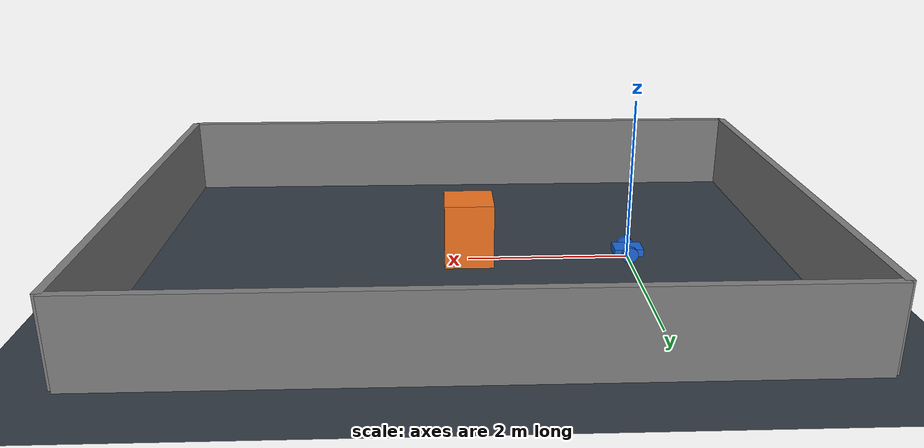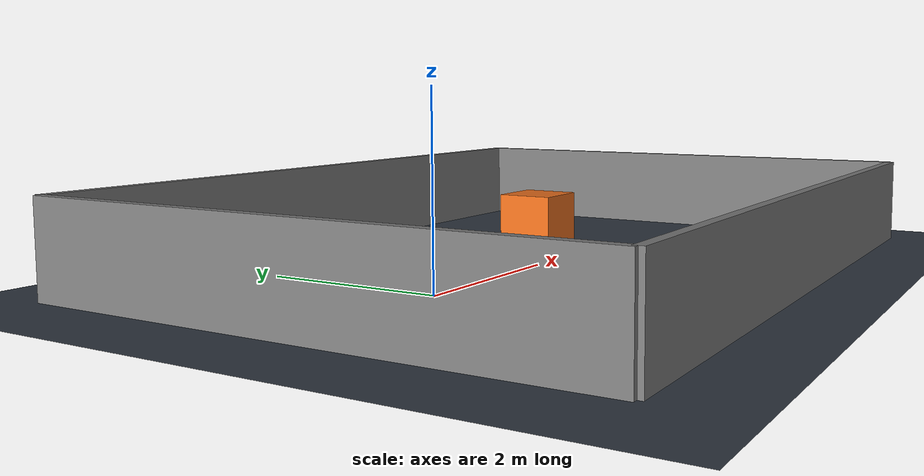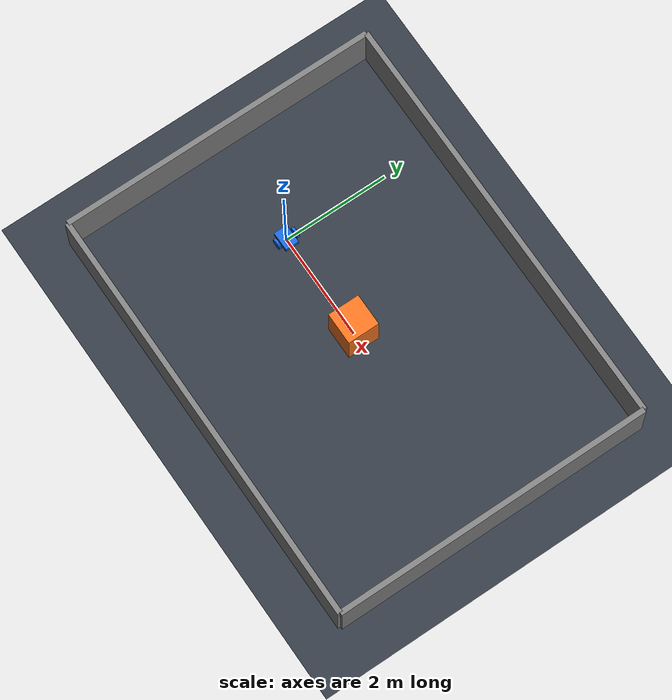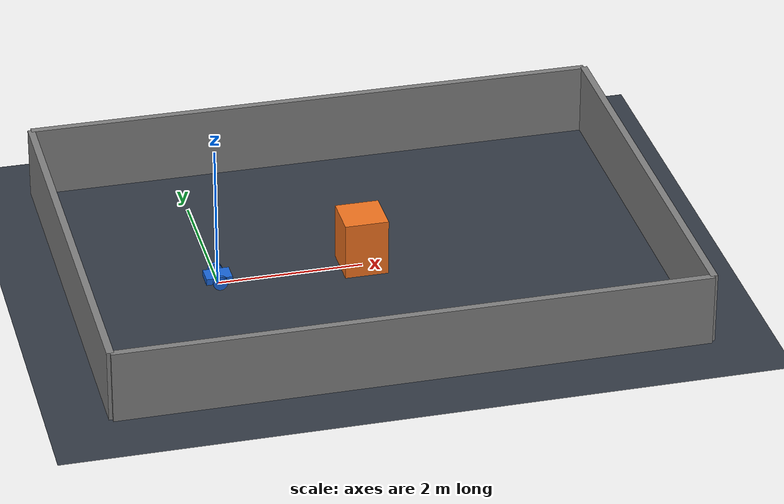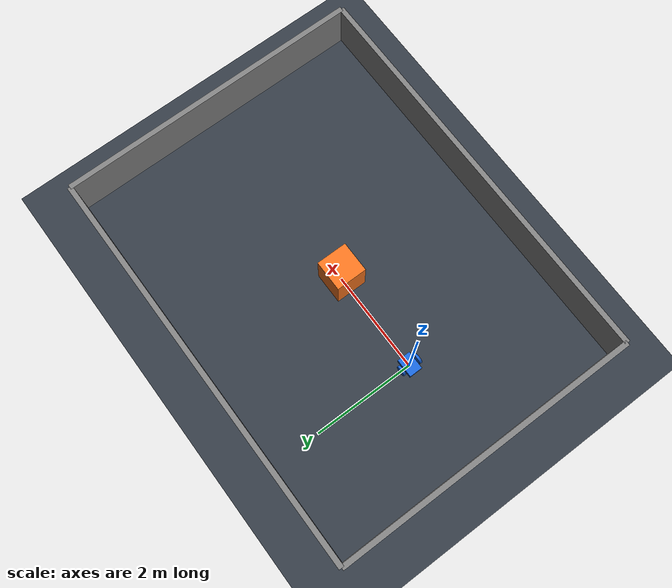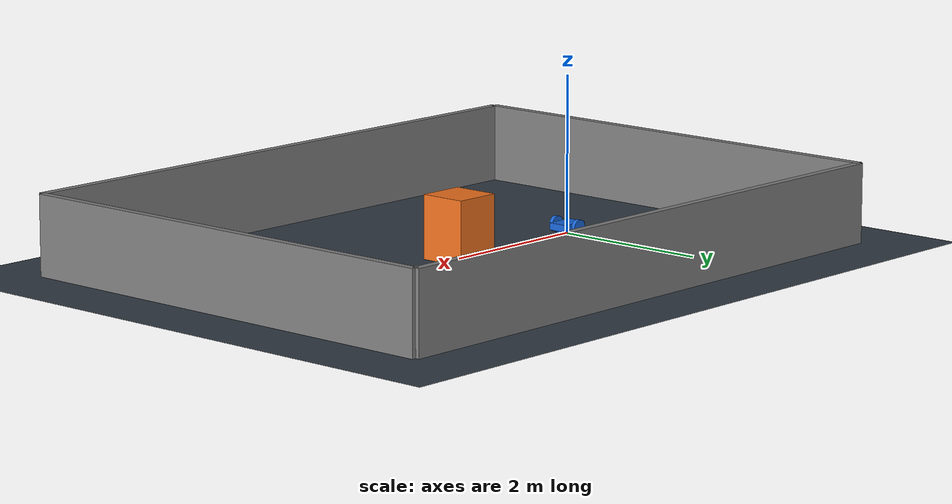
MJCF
<mujoco model="differential_drive_room">
  <compiler angle="radian"/>
  <option timestep="0.002" integrator="implicitfast" cone="elliptic"/>
  <statistic center="2 0 0" extent="9"/>
  <default><geom friction="1 0.01 0.001"/>
    <default class="robot"><geom group="1" rgba=".1 .4 .85 1"/></default>
  </default>
  <worldbody>
    <light pos="2 -1 4" dir="0 0 -1" directional="true"/>
    <geom name="floor" type="plane" size="10 10 .1" rgba=".2 .23 .27 1"/>
    <geom name="west" type="box" pos="-2 0 .5" size=".05 3 .5"/>
    <geom name="east" type="box" pos="6 0 .5" size=".05 3 .5"/>
    <geom name="north" type="box" pos="2 3 .5" size="4 .05 .5"/>
    <geom name="south" type="box" pos="2 -3 .5" size="4 .05 .5"/>
    <geom name="obstacle" type="box" group="2" pos="2 0 .4" size=".3 .3 .4" rgba=".95 .45 .12 1"/>
    <body name="dynamic_box_0" mocap="true" pos="0 0 -10"><geom type="box" group="3" size=".4 .3 .3" rgba=".95 .55 .18 1"/></body>
    <body name="dynamic_box_1" mocap="true" pos="0 0 -10"><geom type="box" group="3" size=".4 .3 .3" rgba=".95 .55 .18 1"/></body>
    <body name="dynamic_box_2" mocap="true" pos="0 0 -10"><geom type="box" group="3" size=".4 .3 .3" rgba=".95 .55 .18 1"/></body>
    <body name="dynamic_box_3" mocap="true" pos="0 0 -10"><geom type="box" group="3" size=".4 .3 .3" rgba=".95 .55 .18 1"/></body>
    <body name="dynamic_box_4" mocap="true" pos="0 0 -10"><geom type="box" group="3" size=".4 .3 .3" rgba=".95 .55 .18 1"/></body>
    <body name="dynamic_box_5" mocap="true" pos="0 0 -10"><geom type="box" group="3" size=".4 .3 .3" rgba=".95 .55 .18 1"/></body>
    <body name="dynamic_box_6" mocap="true" pos="0 0 -10"><geom type="box" group="3" size=".4 .3 .3" rgba=".95 .55 .18 1"/></body>
    <body name="dynamic_box_7" mocap="true" pos="0 0 -10"><geom type="box" group="3" size=".4 .3 .3" rgba=".95 .55 .18 1"/></body>
    <body name="dynamic_box_8" mocap="true" pos="0 0 -10"><geom type="box" group="3" size=".4 .3 .3" rgba=".95 .55 .18 1"/></body>
    <body name="dynamic_box_9" mocap="true" pos="0 0 -10"><geom type="box" group="3" size=".4 .3 .3" rgba=".95 .55 .18 1"/></body>
    <body name="dynamic_box_10" mocap="true" pos="0 0 -10"><geom type="box" group="3" size=".4 .3 .3" rgba=".95 .55 .18 1"/></body>
    <body name="dynamic_box_11" mocap="true" pos="0 0 -10"><geom type="box" group="3" size=".4 .3 .3" rgba=".95 .55 .18 1"/></body>
    <body name="dynamic_box_12" mocap="true" pos="0 0 -10"><geom type="box" group="3" size=".4 .3 .3" rgba=".95 .55 .18 1"/></body>
    <body name="dynamic_box_13" mocap="true" pos="0 0 -10"><geom type="box" group="3" size=".4 .3 .3" rgba=".95 .55 .18 1"/></body>
    <body name="dynamic_box_14" mocap="true" pos="0 0 -10"><geom type="box" group="3" size=".4 .3 .3" rgba=".95 .55 .18 1"/></body>
    <body name="dynamic_box_15" mocap="true" pos="0 0 -10"><geom type="box" group="3" size=".4 .3 .3" rgba=".95 .55 .18 1"/></body>
    <body name="base_link" pos="0 0 .1" childclass="robot">
      <freejoint name="floating_base"/>
      <geom name="chassis" type="box" size=".18 .13 .045" mass="2"/>
      <site name="laser" pos="0 0 .2"/>
      <geom name="front_caster" type="sphere" pos=".14 0 -.065" size=".035" mass=".05" priority="1" friction=".001 .001 .001"/>
      <geom name="back_caster" type="sphere" pos="-.14 0 -.065" size=".035" mass=".05" priority="1" friction=".001 .001 .001"/>
      <body name="left_wheel" pos="0 .18 0">
        <joint name="left_joint" axis="0 1 0" damping=".01"/>
        <geom name="left_tire" type="cylinder" size=".1 .025" quat=".7071067812 .7071067812 0 0" mass=".2"/>
      </body>
      <body name="right_wheel" pos="0 -.18 0">
        <joint name="right_joint" axis="0 1 0" damping=".01"/>
        <geom name="right_tire" type="cylinder" size=".1 .025" quat=".7071067812 .7071067812 0 0" mass=".2"/>
      </body>
    </body>
  </worldbody>
  <actuator>
    <velocity name="left_motor" joint="left_joint" kv="5" forcelimited="true" forcerange="-2 2"/>
    <velocity name="right_motor" joint="right_joint" kv="5" forcelimited="true" forcerange="-2 2"/>
  </actuator>
</mujoco>
